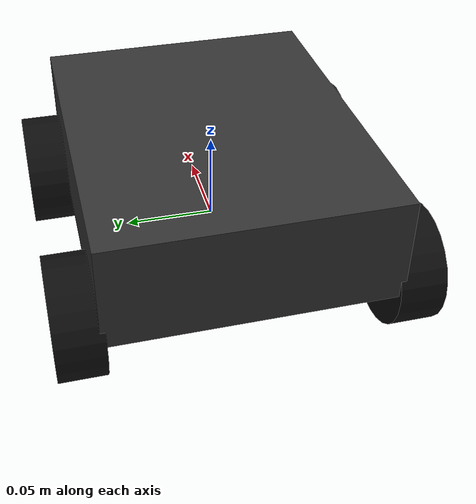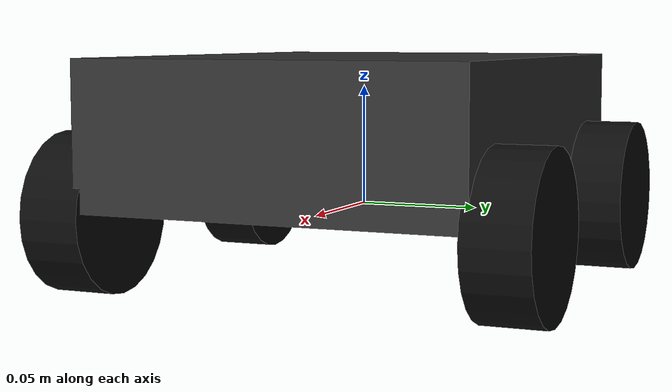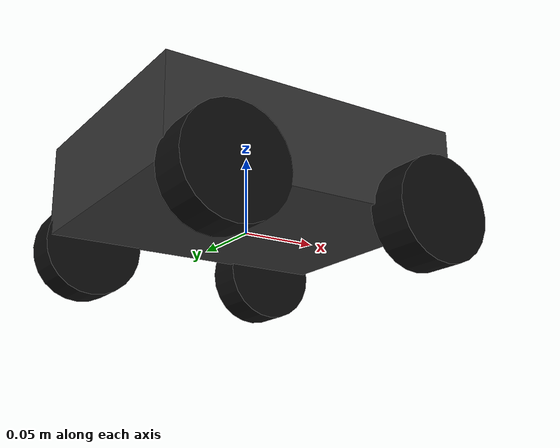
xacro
<?xml version="1.0"?>
<robot name="diffbot" xmlns:xacro="http://www.ros.org/wiki/xacro">

  <!-- ============ PARAMETERS (match these to your real chassis later) ============ -->
  <xacro:property name="chassis_length" value="0.20"/>
  <xacro:property name="chassis_width"  value="0.16"/>
  <xacro:property name="chassis_height" value="0.06"/>
  <xacro:property name="chassis_mass"   value="1.2"/>

  <xacro:property name="wheel_radius"   value="0.033"/>
  <xacro:property name="wheel_width"    value="0.026"/>
  <xacro:property name="wheel_mass"     value="0.05"/>

  <!-- distance from center to left/right wheel plane -->
  <xacro:property name="wheel_ygap"     value="0.09"/>
  <!-- front/back wheel offset from center -->
  <xacro:property name="wheel_xoff"     value="0.07"/>
  <xacro:property name="wheel_zoff"     value="0.0"/>

  <material name="chassis_grey">
    <color rgba="0.2 0.2 0.2 1.0"/>
  </material>
  <material name="wheel_black">
    <color rgba="0.05 0.05 0.05 1.0"/>
  </material>

  <!-- ============ BASE LINK ============ -->
  <link name="base_link"/>

  <joint name="base_to_chassis" type="fixed">
    <parent link="base_link"/>
    <child link="chassis"/>
    <origin xyz="0 0 ${wheel_radius}" rpy="0 0 0"/>
  </joint>

  <link name="chassis">
    <visual>
      <origin xyz="0 0 0" rpy="0 0 0"/>
      <geometry>
        <box size="${chassis_length} ${chassis_width} ${chassis_height}"/>
      </geometry>
      <material name="chassis_grey"/>
    </visual>
    <collision>
      <origin xyz="0 0 0" rpy="0 0 0"/>
      <geometry>
        <box size="${chassis_length} ${chassis_width} ${chassis_height}"/>
      </geometry>
    </collision>
    <inertial>
      <mass value="${chassis_mass}"/>
      <origin xyz="0 0 0"/>
      <inertia ixx="0.01" ixy="0.0" ixz="0.0" iyy="0.02" iyz="0.0" izz="0.02"/>
    </inertial>
  </link>

  <!-- ============ WHEEL MACRO ============ -->
  <xacro:macro name="wheel" params="prefix x_reflect y_reflect">
    <link name="${prefix}_wheel">
      <visual>
        <origin xyz="0 0 0" rpy="1.5708 0 0"/>
        <geometry>
          <cylinder radius="${wheel_radius}" length="${wheel_width}"/>
        </geometry>
        <material name="wheel_black"/>
      </visual>
      <collision>
        <origin xyz="0 0 0" rpy="1.5708 0 0"/>
        <geometry>
          <cylinder radius="${wheel_radius}" length="${wheel_width}"/>
        </geometry>
      </collision>
      <inertial>
        <mass value="${wheel_mass}"/>
        <origin xyz="0 0 0"/>
        <inertia ixx="0.0005" ixy="0.0" ixz="0.0" iyy="0.0005" iyz="0.0" izz="0.0009"/>
      </inertial>
    </link>

    <joint name="${prefix}_wheel_joint" type="continuous">
      <parent link="chassis"/>
      <child link="${prefix}_wheel"/>
      <origin xyz="${x_reflect*wheel_xoff} ${y_reflect*wheel_ygap} ${wheel_zoff - wheel_radius}" rpy="0 0 0"/>
      <axis xyz="0 1 0"/>
    </joint>
  </xacro:macro>

  <xacro:wheel prefix="front_left"  x_reflect="1"  y_reflect="1"/>
  <xacro:wheel prefix="front_right" x_reflect="1"  y_reflect="-1"/>
  <xacro:wheel prefix="rear_left"   x_reflect="-1" y_reflect="1"/>
  <xacro:wheel prefix="rear_right"  x_reflect="-1" y_reflect="-1"/>

  <gazebo>
    <plugin name="diffbot_drive" filename="libgazebo_ros_diff_drive.so">
      <ros>
        <namespace></namespace>
      </ros>

      <!-- wheels: left pair ganged, right pair ganged (matches L298N 2-channel control) -->
      <left_joint>front_left_wheel_joint</left_joint>
      <right_joint>front_right_wheel_joint</right_joint>

      <wheel_separation>${2*wheel_ygap}</wheel_separation>
      <wheel_diameter>${2*wheel_radius}</wheel_diameter>

      <max_wheel_torque>20</max_wheel_torque>
      <max_wheel_acceleration>20.0</max_wheel_acceleration>

      <command_topic>cmd_vel</command_topic>

      <odometry_topic>odom</odometry_topic>
      <odometry_frame>odom</odometry_frame>
      <robot_base_frame>base_link</robot_base_frame>
      <publish_odom>true</publish_odom>
      <publish_odom_tf>true</publish_odom_tf>
      <publish_wheel_tf>true</publish_wheel_tf>

      <update_rate>50</update_rate>
    </plugin>

    <!-- Mimic the rear wheels to move with the front wheels visually -->
    <plugin name="rear_left_mimic" filename="libgazebo_ros_joint_state_publisher.so">
      <ros><namespace></namespace></ros>
      <update_rate>50</update_rate>
      <joint_name>front_left_wheel_joint</joint_name>
      <joint_name>front_right_wheel_joint</joint_name>
      <joint_name>rear_left_wheel_joint</joint_name>
      <joint_name>rear_right_wheel_joint</joint_name>
    </plugin>
  </gazebo>

  <gazebo reference="chassis">
    <material>Gazebo/DarkGrey</material>
  </gazebo>

</robot>
